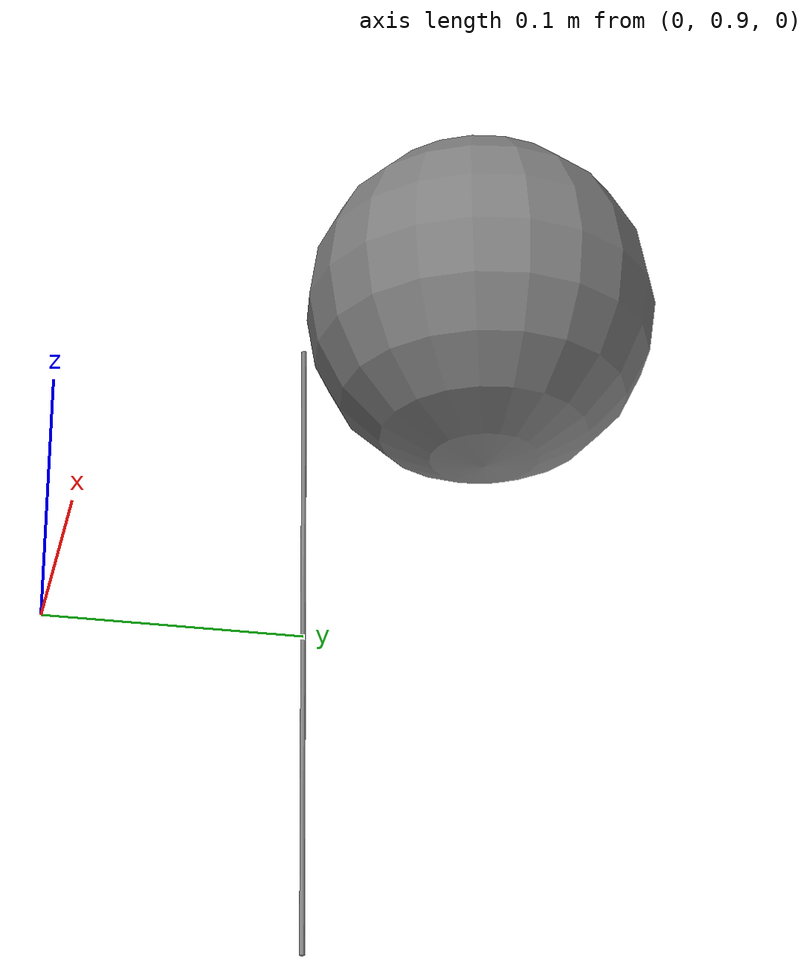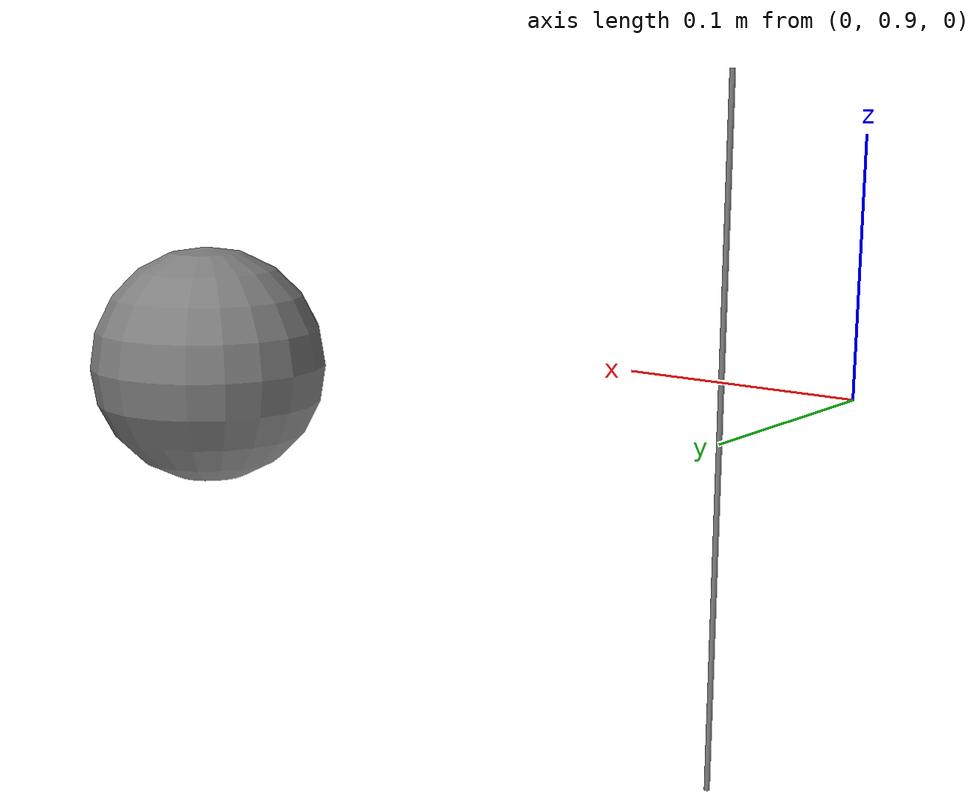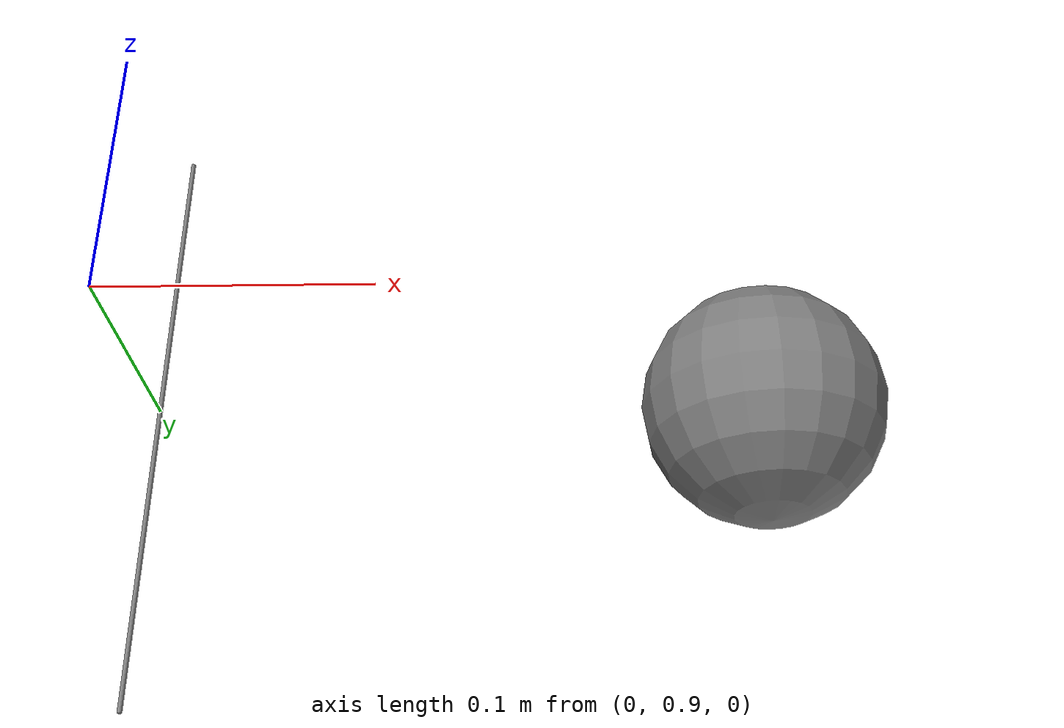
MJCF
<mujoco model="pendulum">
  <option gravity="0 -9.81 0" />

  <worldbody>
    <light diffuse=".5 .5 .5" pos="0 0 -3" dir="0 0 1"/>

    <body name="pendulum" pos="0 1 0">
      <joint name="hinge" type="hinge" axis="0 0 1" damping="0" frictionloss="0"/>
      <body name="rod" pos="0 0 0">
        <!-- Rod: Length 0.2485m, Mass 0, Collision disabled -->
        <geom type="cylinder" size="0.001 0.12425" mass="0" contype="0" conaffinity="0"/>
      </body>
      <body name="bob" pos="0.2485 0 0">
        <!-- Bob: Shape sphere, Diameter 0.1m (radius 0.05m), Mass 1.0kg -->
        <geom type="sphere" size="0.05" mass="1.0"/>
      </body>
    </body>
  </worldbody>
</mujoco>
